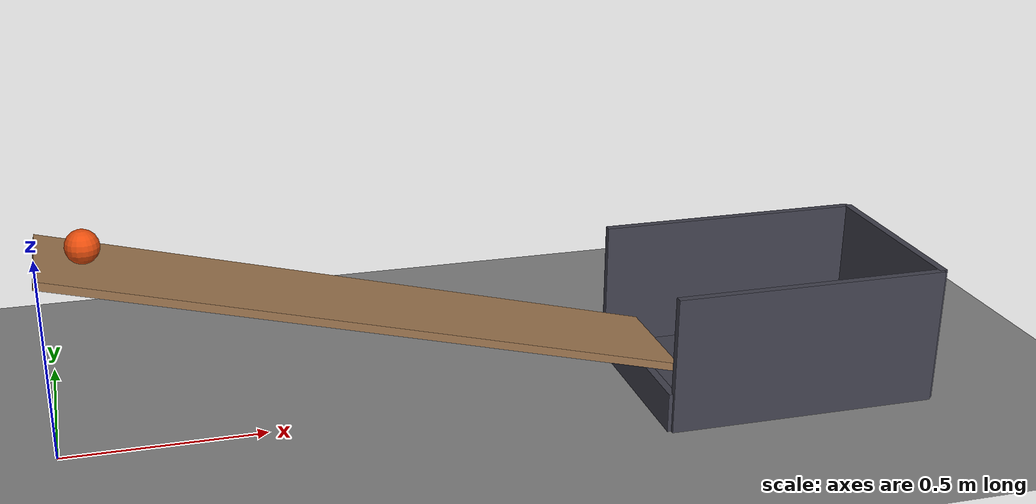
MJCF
<mujoco model="rolling_into_a_cup">
  <compiler angle="radian"/>
  <option timestep="0.002"/>
  <worldbody>
    <geom name="floor" type="plane" size="6 6 0.1" friction="0.8 0.005 0.002"/>
    <body name="ramp">
      <geom name="ramp" type="box" pos="0.75 0 0.31" size="0.773692 0.15 0.01" euler="0 0.248113 0" friction="0.8 0.005 0.001" solref="0.01 1" rgba="0.6 0.45 0.3 1"/>
    </body>
    <body name="cup">
      <geom name="cup_base" type="box" pos="1.8 0 0.01" size="0.35 0.25 0.01" friction="0.9 0.02 0.03" solref="0.01 1" rgba="0.25 0.25 0.3 1"/>
      <geom name="cup_near_wall" type="box" pos="1.45 0 0.05" size="0.01 0.25 0.05" friction="0.9 0.02 0.03" solref="0.01 1" rgba="0.25 0.25 0.3 1"/>
      <geom name="cup_far_wall" type="box" pos="2.15 0 0.175" size="0.01 0.25 0.175" friction="0.9 0.02 0.03" solref="0.01 1" rgba="0.25 0.25 0.3 1"/>
      <geom name="cup_left_wall" type="box" pos="1.8 0.25 0.175" size="0.35 0.01 0.175" friction="0.9 0.02 0.03" solref="0.01 1" rgba="0.25 0.25 0.3 1"/>
      <geom name="cup_right_wall" type="box" pos="1.8 -0.25 0.175" size="0.35 0.01 0.175" friction="0.9 0.02 0.03" solref="0.01 1" rgba="0.25 0.25 0.3 1"/>
    </body>
    <body name="ball" pos="0.109217 0 0.523911">
      <freejoint/>
      <geom name="ball" type="sphere" pos="0 0 0" size="0.04" mass="0.15" condim="6" friction="0.8 0.005 0.001" solref="0.01 1" rgba="0.9 0.3 0.05 1"/>
    </body>
  </worldbody>
  <keyframe>
    <key name="start" qpos="0.109217 0 0.523911 1 0 0 0" qvel="0 0 0 0 0 0"/>
  </keyframe>
</mujoco>
